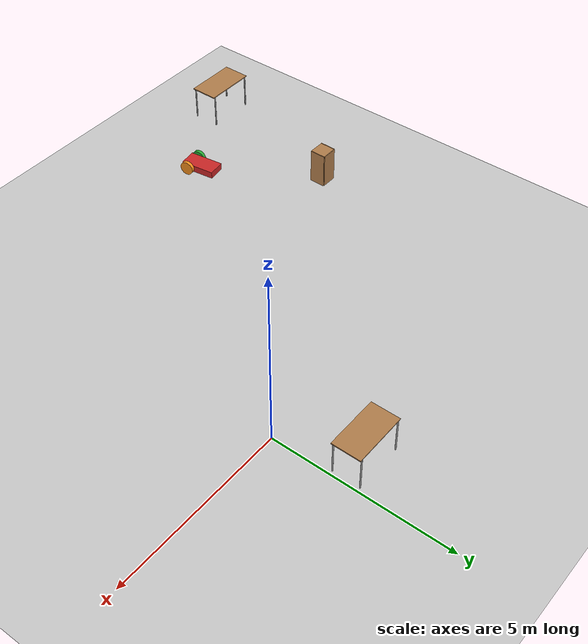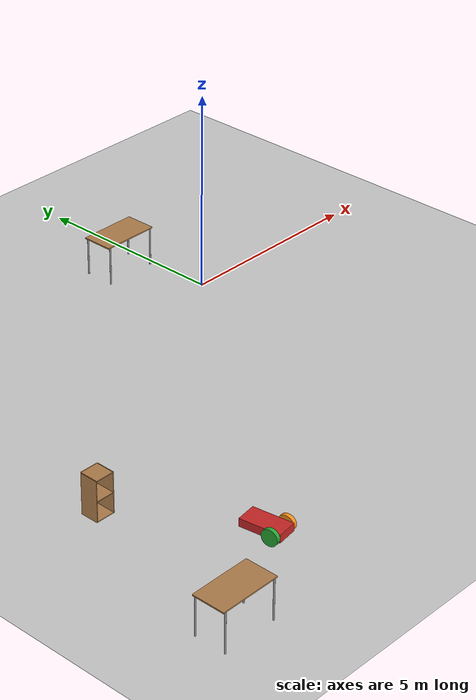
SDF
<sdf version="1.7">
 <world name="default">
  <model name="ground_plane">
   <static>1</static>
   <link name="link">
    <collision name="collision">
     <geometry><plane><normal>0 0 1</normal><size>100 100</size></plane></geometry>
     <surface>
      <contact><collide_bitmask>65535</collide_bitmask></contact>
      <friction><ode><mu>100</mu><mu2>50</mu2></ode></friction>
     </surface>
    </collision>
    <visual name="visual">
     <cast_shadows>0</cast_shadows>
     <geometry><plane><normal>0 0 1</normal><size>100 100</size></plane></geometry>
     <material>
      <script><uri>file://media/materials/scripts/gazebo.material</uri><name>Gazebo/Grey</name></script>
     </material>
    </visual>
   </link>
  </model>
  <model name="wagon">
   <link name="chassis">
    <inertial>
     <mass>1</mass>
     <inertia>
      <ixx>0.166667</ixx>
      <ixy>0</ixy>
      <ixz>0</ixz>
      <iyy>0.166667</iyy>
      <iyz>0</iyz>
      <izz>0.166667</izz>
     </inertia>
    </inertial>
    <pose>0.09823 -0.107427 0.483928 0 -0 0</pose>
    <visual name="visual">
     <geometry><box><size>0.5 1 0.2</size></box></geometry>
     <material>
      <lighting>1</lighting>
      <script><uri>file://media/materials/scripts/gazebo.material</uri><name>Gazebo/Red</name></script>
      <shader type="pixel"><normal_map>__default__</normal_map></shader>
      <ambient>1 0 0 1</ambient>
      <diffuse>1 0 0 1</diffuse>
      <specular>0.1 0.1 0.1 1</specular>
      <emissive>0 0 0 1</emissive>
     </material>
    </visual>
    <collision name="collision">
     <geometry><box><size>0.5 1 0.2</size></box></geometry>
     <surface>
      <friction>
       <ode><mu>1</mu><mu2>1</mu2><fdir1>0 0 0</fdir1><slip1>0</slip1><slip2>0</slip2></ode>
       <torsional>
        <coefficient>1</coefficient>
        <patch_radius>0</patch_radius>
        <surface_radius>0</surface_radius>
        <use_patch_radius>1</use_patch_radius>
        <ode><slip>0</slip></ode>
       </torsional>
      </friction>
      <bounce><restitution_coefficient>0</restitution_coefficient><threshold>1e+06</threshold></bounce>
      <contact>
       <collide_without_contact>0</collide_without_contact>
       <collide_without_contact_bitmask>1</collide_without_contact_bitmask>
       <collide_bitmask>1</collide_bitmask>
       <ode>
        <soft_cfm>0</soft_cfm>
        <soft_erp>0.2</soft_erp>
        <kp>1e+13</kp>
        <kd>1</kd>
        <max_vel>0.01</max_vel>
        <min_depth>0</min_depth>
       </ode>
       <bullet>
        <split_impulse>1</split_impulse>
        <split_impulse_penetration_threshold>-0.01</split_impulse_penetration_threshold>
        <soft_cfm>0</soft_cfm>
        <soft_erp>0.2</soft_erp>
        <kp>1e+13</kp>
        <kd>1</kd>
       </bullet>
      </contact>
     </surface>
    </collision>
   </link>
   <link name="caster">
    <inertial>
     <mass>1</mass>
     <inertia><ixx>0.1</ixx><ixy>0</ixy><ixz>0</ixz><iyy>0.1</iyy><iyz>0</iyz><izz>0.1</izz></inertia>
    </inertial>
    <pose>0.07823 0.252573 0.387496 0 -0 0</pose>
    <visual name="visual">
     <geometry><sphere><radius>0.1</radius></sphere></geometry>
     <material>
      <lighting>1</lighting>
      <script><uri>file://media/materials/scripts/gazebo.material</uri><name>Gazebo/Blue</name></script>
      <shader type="pixel"><normal_map>__default__</normal_map></shader>
      <ambient>0 0 1 1</ambient>
      <diffuse>0 0 1 1</diffuse>
      <specular>0.1 0.1 0.1 1</specular>
      <emissive>0 0 0 1</emissive>
     </material>
    </visual>
    <collision name="collision">
     <geometry><sphere><radius>0.1</radius></sphere></geometry>
     <surface>
      <friction>
       <ode><mu>1</mu><mu2>1</mu2><fdir1>0 0 0</fdir1><slip1>0</slip1><slip2>0</slip2></ode>
       <torsional>
        <coefficient>1</coefficient>
        <patch_radius>0</patch_radius>
        <surface_radius>0</surface_radius>
        <use_patch_radius>1</use_patch_radius>
        <ode><slip>0</slip></ode>
       </torsional>
      </friction>
      <bounce><restitution_coefficient>0</restitution_coefficient><threshold>1e+06</threshold></bounce>
      <contact>
       <collide_without_contact>0</collide_without_contact>
       <collide_without_contact_bitmask>1</collide_without_contact_bitmask>
       <collide_bitmask>1</collide_bitmask>
       <ode>
        <soft_cfm>0</soft_cfm>
        <soft_erp>0.2</soft_erp>
        <kp>1e+13</kp>
        <kd>1</kd>
        <max_vel>0.01</max_vel>
        <min_depth>0</min_depth>
       </ode>
       <bullet>
        <split_impulse>1</split_impulse>
        <split_impulse_penetration_threshold>-0.01</split_impulse_penetration_threshold>
        <soft_cfm>0</soft_cfm>
        <soft_erp>0.2</soft_erp>
        <kp>1e+13</kp>
        <kd>1</kd>
       </bullet>
      </contact>
     </surface>
    </collision>
   </link>
   <link name="right_wheel">
    <inertial>
     <mass>1</mass>
     <inertia><ixx>0.145833</ixx><ixy>0</ixy><ixz>0</ixz><iyy>0.145833</iyy><iyz>0</iyz><izz>0.125</izz></inertia>
    </inertial>
    <pose>0.398249 -0.407428 0.483928 0 -0 0</pose>
    <visual name="visual">
     <pose>0 0 0 0 1.5707 0</pose>
     <geometry><cylinder><radius>0.2</radius><length>0.1</length></cylinder></geometry>
     <material>
      <lighting>1</lighting>
      <script><uri>file://media/materials/scripts/gazebo.material</uri><name>Gazebo/Orange</name></script>
      <shader type="pixel"><normal_map>__default__</normal_map></shader>
      <ambient>1 0.509 0.047 1</ambient>
      <diffuse>1 0.509 0.047 1</diffuse>
      <specular>0.5 0.5 0.5 1</specular>
      <emissive>0 0 0 1</emissive>
     </material>
    </visual>
    <collision name="collision">
     <pose>0 0 0 0 1.5707 0</pose>
     <geometry><cylinder><radius>0.2</radius><length>0.1</length></cylinder></geometry>
     <surface>
      <friction>
       <ode><mu>1</mu><mu2>1</mu2><fdir1>0 0 0</fdir1><slip1>0</slip1><slip2>0</slip2></ode>
       <torsional>
        <coefficient>1</coefficient>
        <patch_radius>0</patch_radius>
        <surface_radius>0</surface_radius>
        <use_patch_radius>1</use_patch_radius>
        <ode><slip>0</slip></ode>
       </torsional>
      </friction>
      <bounce><restitution_coefficient>0</restitution_coefficient><threshold>1e+06</threshold></bounce>
      <contact>
       <collide_without_contact>0</collide_without_contact>
       <collide_without_contact_bitmask>1</collide_without_contact_bitmask>
       <collide_bitmask>1</collide_bitmask>
       <ode>
        <soft_cfm>0</soft_cfm>
        <soft_erp>0.2</soft_erp>
        <kp>1e+13</kp>
        <kd>1</kd>
        <max_vel>0.01</max_vel>
        <min_depth>0</min_depth>
       </ode>
       <bullet>
        <split_impulse>1</split_impulse>
        <split_impulse_penetration_threshold>-0.01</split_impulse_penetration_threshold>
        <soft_cfm>0</soft_cfm>
        <soft_erp>0.2</soft_erp>
        <kp>1e+13</kp>
        <kd>1</kd>
       </bullet>
      </contact>
     </surface>
    </collision>
   </link>
   <link name="left_wheel">
    <inertial>
     <mass>1</mass>
     <inertia><ixx>0.145833</ixx><ixy>0</ixy><ixz>0</ixz><iyy>0.145833</iyy><iyz>0</iyz><izz>0.125</izz></inertia>
    </inertial>
    <pose>-0.20179 -0.407428 0.483928 0 -0 0</pose>
    <visual name="visual">
     <pose>0 0 0 0 1.5707 0</pose>
     <geometry><cylinder><radius>0.2</radius><length>0.1</length></cylinder></geometry>
     <material>
      <lighting>1</lighting>
      <script><uri>file://media/materials/scripts/gazebo.material</uri><name>Gazebo/Green</name></script>
      <shader type="pixel"><normal_map>__default__</normal_map></shader>
      <ambient>0 1 0 1</ambient>
      <diffuse>0 1 0 1</diffuse>
      <specular>0.1 0.1 0.1 1</specular>
      <emissive>0 0 0 1</emissive>
     </material>
    </visual>
    <collision name="collision">
     <pose>0 0 0 0 1.5707 0</pose>
     <geometry><cylinder><radius>0.2</radius><length>0.1</length></cylinder></geometry>
     <surface>
      <friction>
       <ode><mu>1</mu><mu2>1</mu2><fdir1>0 0 0</fdir1><slip1>0</slip1><slip2>0</slip2></ode>
       <torsional>
        <coefficient>1</coefficient>
        <patch_radius>0</patch_radius>
        <surface_radius>0</surface_radius>
        <use_patch_radius>1</use_patch_radius>
        <ode><slip>0</slip></ode>
       </torsional>
      </friction>
      <bounce><restitution_coefficient>0</restitution_coefficient><threshold>1e+06</threshold></bounce>
      <contact>
       <collide_without_contact>0</collide_without_contact>
       <collide_without_contact_bitmask>1</collide_without_contact_bitmask>
       <collide_bitmask>1</collide_bitmask>
       <ode>
        <soft_cfm>0</soft_cfm>
        <soft_erp>0.2</soft_erp>
        <kp>1e+13</kp>
        <kd>1</kd>
        <max_vel>0.01</max_vel>
        <min_depth>0</min_depth>
       </ode>
       <bullet>
        <split_impulse>1</split_impulse>
        <split_impulse_penetration_threshold>-0.01</split_impulse_penetration_threshold>
        <soft_cfm>0</soft_cfm>
        <soft_erp>0.2</soft_erp>
        <kp>1e+13</kp>
        <kd>1</kd>
       </bullet>
      </contact>
     </surface>
    </collision>
   </link>
   <joint name="chassis_JOINT_0" type="ball">
    <parent>chassis</parent>
    <child>caster</child>
    <physics>
     <ode><limit><cfm>0</cfm><erp>0.2</erp></limit><suspension><cfm>0</cfm><erp>0.2</erp></suspension></ode>
    </physics>
   </joint>
   <joint name="chassis_JOINT_1" type="revolute">
    <parent>chassis</parent>
    <child>right_wheel</child>
    <axis>
     <xyz>1 0 0</xyz>
     <limit>
      <lower>-1.79769e+308</lower>
      <upper>1.79769e+308</upper>
      <effort>-1</effort>
      <velocity>-1</velocity>
     </limit>
     <dynamics>
      <spring_reference>0</spring_reference>
      <spring_stiffness>0</spring_stiffness>
      <damping>0</damping>
     </dynamics>
    </axis>
    <physics>
     <ode><limit><cfm>0</cfm><erp>0.2</erp></limit><suspension><cfm>0</cfm><erp>0.2</erp></suspension></ode>
    </physics>
   </joint>
   <joint name="chassis_JOINT_2" type="revolute">
    <parent>chassis</parent>
    <child>left_wheel</child>
    <axis>
     <xyz>1 0 0</xyz>
     <limit>
      <lower>-1.79769e+308</lower>
      <upper>1.79769e+308</upper>
      <effort>-1</effort>
      <velocity>-1</velocity>
     </limit>
     <dynamics>
      <spring_reference>0</spring_reference>
      <spring_stiffness>0</spring_stiffness>
      <damping>0</damping>
     </dynamics>
    </axis>
    <physics>
     <ode><limit><cfm>0</cfm><erp>0.2</erp></limit><suspension><cfm>0</cfm><erp>0.2</erp></suspension></ode>
    </physics>
   </joint>
   <static>0</static>
   <pose>-6.54168 -7.69827 -0.286123 -0.005413 -4e-06 0.136948</pose>
  </model>
  <model name="table">
   <static>1</static>
   <link name="link">
    <collision name="surface">
     <pose>0 0 1 0 -0 0</pose>
     <geometry><box><size>1.5 0.8 0.03</size></box></geometry>
     <surface><friction><ode><mu>0.6</mu><mu2>0.6</mu2></ode></friction></surface>
    </collision>
    <visual name="visual1">
     <pose>0 0 1 0 -0 0</pose>
     <geometry><box><size>1.5 0.8 0.03</size></box></geometry>
     <material>
      <script><uri>file://media/materials/scripts/gazebo.material</uri><name>Gazebo/Wood</name></script>
     </material>
    </visual>
    <collision name="front_left_leg">
     <pose>0.68 0.38 0.5 0 -0 0</pose>
     <geometry><cylinder><radius>0.02</radius><length>1</length></cylinder></geometry>
    </collision>
    <visual name="front_left_leg">
     <pose>0.68 0.38 0.5 0 -0 0</pose>
     <geometry><cylinder><radius>0.02</radius><length>1</length></cylinder></geometry>
     <material>
      <script><uri>file://media/materials/scripts/gazebo.material</uri><name>Gazebo/Grey</name></script>
     </material>
    </visual>
    <collision name="front_right_leg">
     <pose>0.68 -0.38 0.5 0 -0 0</pose>
     <geometry><cylinder><radius>0.02</radius><length>1</length></cylinder></geometry>
    </collision>
    <visual name="front_right_leg">
     <pose>0.68 -0.38 0.5 0 -0 0</pose>
     <geometry><cylinder><radius>0.02</radius><length>1</length></cylinder></geometry>
     <material>
      <script><uri>file://media/materials/scripts/gazebo.material</uri><name>Gazebo/Grey</name></script>
     </material>
    </visual>
    <collision name="back_right_leg">
     <pose>-0.68 -0.38 0.5 0 -0 0</pose>
     <geometry><cylinder><radius>0.02</radius><length>1</length></cylinder></geometry>
    </collision>
    <visual name="back_right_leg">
     <pose>-0.68 -0.38 0.5 0 -0 0</pose>
     <geometry><cylinder><radius>0.02</radius><length>1</length></cylinder></geometry>
     <material>
      <script><uri>file://media/materials/scripts/gazebo.material</uri><name>Gazebo/Grey</name></script>
     </material>
    </visual>
    <collision name="back_left_leg">
     <pose>-0.68 0.38 0.5 0 -0 0</pose>
     <geometry><cylinder><radius>0.02</radius><length>1</length></cylinder></geometry>
    </collision>
    <visual name="back_left_leg">
     <pose>-0.68 0.38 0.5 0 -0 0</pose>
     <geometry><cylinder><radius>0.02</radius><length>1</length></cylinder></geometry>
     <material>
      <script><uri>file://media/materials/scripts/gazebo.material</uri><name>Gazebo/Grey</name></script>
     </material>
    </visual>
   </link>
   <pose>-0.802212 2.01362 0 0 -0 0</pose>
  </model>
  <model name="table_1">
   <static>1</static>
   <link name="link">
    <collision name="surface">
     <pose>0 0 1 0 -0 0</pose>
     <geometry><box><size>1.5 0.8 0.03</size></box></geometry>
     <surface><friction><ode><mu>0.6</mu><mu2>0.6</mu2></ode></friction></surface>
    </collision>
    <visual name="visual1">
     <pose>0 0 1 0 -0 0</pose>
     <geometry><box><size>1.5 0.8 0.03</size></box></geometry>
     <material>
      <script><uri>file://media/materials/scripts/gazebo.material</uri><name>Gazebo/Wood</name></script>
     </material>
    </visual>
    <collision name="front_left_leg">
     <pose>0.68 0.38 0.5 0 -0 0</pose>
     <geometry><cylinder><radius>0.02</radius><length>1</length></cylinder></geometry>
    </collision>
    <visual name="front_left_leg">
     <pose>0.68 0.38 0.5 0 -0 0</pose>
     <geometry><cylinder><radius>0.02</radius><length>1</length></cylinder></geometry>
     <material>
      <script><uri>file://media/materials/scripts/gazebo.material</uri><name>Gazebo/Grey</name></script>
     </material>
    </visual>
    <collision name="front_right_leg">
     <pose>0.68 -0.38 0.5 0 -0 0</pose>
     <geometry><cylinder><radius>0.02</radius><length>1</length></cylinder></geometry>
    </collision>
    <visual name="front_right_leg">
     <pose>0.68 -0.38 0.5 0 -0 0</pose>
     <geometry><cylinder><radius>0.02</radius><length>1</length></cylinder></geometry>
     <material>
      <script><uri>file://media/materials/scripts/gazebo.material</uri><name>Gazebo/Grey</name></script>
     </material>
    </visual>
    <collision name="back_right_leg">
     <pose>-0.68 -0.38 0.5 0 -0 0</pose>
     <geometry><cylinder><radius>0.02</radius><length>1</length></cylinder></geometry>
    </collision>
    <visual name="back_right_leg">
     <pose>-0.68 -0.38 0.5 0 -0 0</pose>
     <geometry><cylinder><radius>0.02</radius><length>1</length></cylinder></geometry>
     <material>
      <script><uri>file://media/materials/scripts/gazebo.material</uri><name>Gazebo/Grey</name></script>
     </material>
    </visual>
    <collision name="back_left_leg">
     <pose>-0.68 0.38 0.5 0 -0 0</pose>
     <geometry><cylinder><radius>0.02</radius><length>1</length></cylinder></geometry>
    </collision>
    <visual name="back_left_leg">
     <pose>-0.68 0.38 0.5 0 -0 0</pose>
     <geometry><cylinder><radius>0.02</radius><length>1</length></cylinder></geometry>
     <material>
      <script><uri>file://media/materials/scripts/gazebo.material</uri><name>Gazebo/Grey</name></script>
     </material>
    </visual>
   </link>
   <pose>-9.08358 -9.34602 0 0 -0 0</pose>
  </model>
  <model name="cabinet">
   <static>1</static>
   <link name="cabinet_bottom_plate">
    <inertial>
     <pose>0 0 -1 0 -0 0</pose>
     <inertia><ixx>2.05</ixx><ixy>0</ixy><ixz>0</ixz><iyy>2.05</iyy><iyz>0</iyz><izz>2.05</izz></inertia>
     <mass>25</mass>
    </inertial>
    <collision name="cabinet_bottom_plate_geom">
     <pose>0 0 0.01 0 -0 0</pose>
     <geometry><box><size>0.45 0.45 0.02</size></box></geometry>
    </collision>
    <visual name="cabinet_bottom_plate_geom_visual">
     <pose>0 0 0.01 0 -0 0</pose>
     <geometry><box><size>0.45 0.45 0.02</size></box></geometry>
     <material>
      <script><uri>file://media/materials/scripts/gazebo.material</uri><name>Gazebo/Wood</name></script>
     </material>
    </visual>
    <collision name="cabinet_bottom_plate_geom_cabinet_back_plate">
     <pose>0.235 0 0.51 0 -0 0</pose>
     <geometry><box><size>0.02 0.45 1.02</size></box></geometry>
    </collision>
    <visual name="cabinet_bottom_plate_geom_cabinet_back_plate_visual">
     <pose>0.235 0 0.51 0 -0 0</pose>
     <geometry><box><size>0.02 0.45 1.02</size></box></geometry>
     <material>
      <script><uri>file://media/materials/scripts/gazebo.material</uri><name>Gazebo/Wood</name></script>
     </material>
    </visual>
    <collision name="cabinet_bottom_plate_geom_cabinet_left_plate">
     <pose>0 0.235 0.51 0 -0 0</pose>
     <geometry><box><size>0.45 0.02 1.02</size></box></geometry>
    </collision>
    <visual name="cabinet_bottom_plate_geom_cabinet_left_plate_visual">
     <pose>0 0.235 0.51 0 -0 0</pose>
     <geometry><box><size>0.45 0.02 1.02</size></box></geometry>
     <material>
      <script><uri>file://media/materials/scripts/gazebo.material</uri><name>Gazebo/Wood</name></script>
     </material>
    </visual>
    <collision name="cabinet_bottom_plate_geom_cabinet_middle_plate">
     <pose>0 0 0.51 0 -0 0</pose>
     <geometry><box><size>0.45 0.45 0.02</size></box></geometry>
    </collision>
    <visual name="cabinet_bottom_plate_geom_cabinet_middle_plate_visual">
     <pose>0 0 0.51 0 -0 0</pose>
     <geometry><box><size>0.45 0.45 0.02</size></box></geometry>
     <material>
      <script><uri>file://media/materials/scripts/gazebo.material</uri><name>Gazebo/Wood</name></script>
     </material>
    </visual>
    <collision name="cabinet_bottom_plate_geom_cabinet_right_plate">
     <pose>0 -0.235 0.51 0 -0 0</pose>
     <geometry><box><size>0.45 0.02 1.02</size></box></geometry>
    </collision>
    <visual name="cabinet_bottom_plate_geom_cabinet_right_plate_visual">
     <pose>0 -0.235 0.51 0 -0 0</pose>
     <geometry><box><size>0.45 0.02 1.02</size></box></geometry>
     <material>
      <script><uri>file://media/materials/scripts/gazebo.material</uri><name>Gazebo/Wood</name></script>
     </material>
    </visual>
    <collision name="cabinet_bottom_plate_geom_cabinet_top_plate">
     <pose>0 0 1.01 0 -0 0</pose>
     <geometry><box><size>0.45 0.45 0.02</size></box></geometry>
    </collision>
    <visual name="cabinet_bottom_plate_geom_cabinet_top_plate_visual">
     <pose>0 0 1.01 0 -0 0</pose>
     <geometry><box><size>0.45 0.45 0.02</size></box></geometry>
     <material>
      <script><uri>file://media/materials/scripts/gazebo.material</uri><name>Gazebo/Wood</name></script>
     </material>
    </visual>
   </link>
   <pose>-8.28524 -4.85313 0 0 -0 1.56501</pose>
  </model>
 </world>
</sdf>
